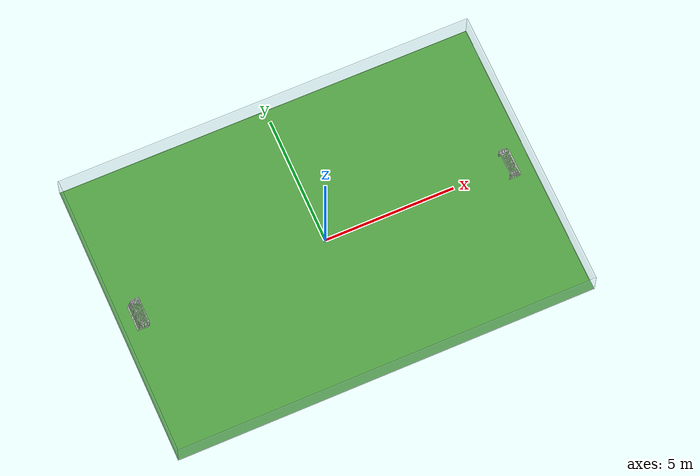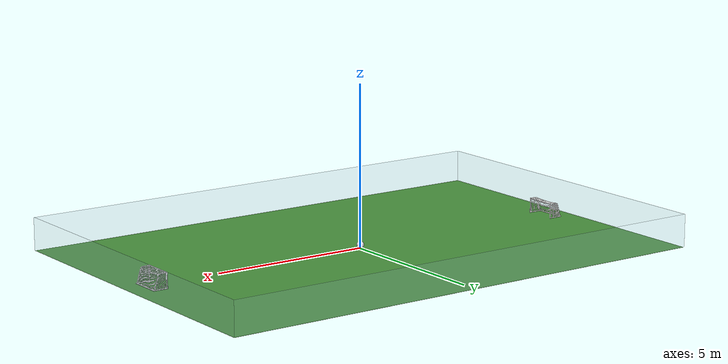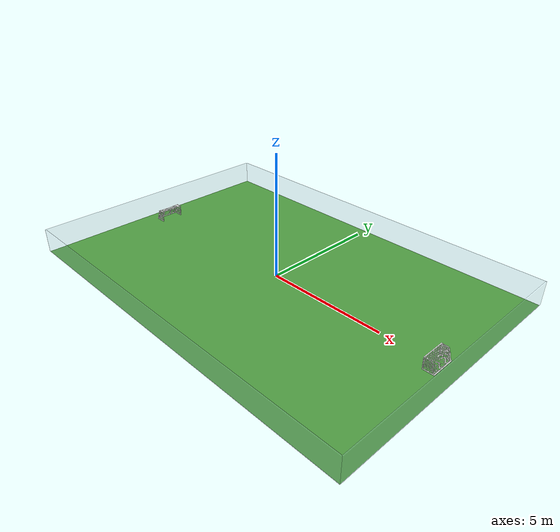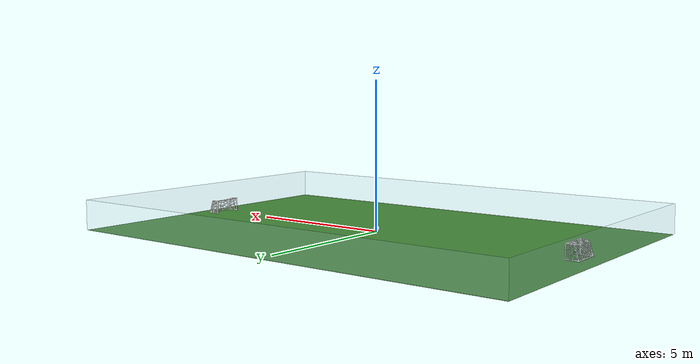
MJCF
<mujoco model="soccer_field_14x9">
  <!-- 14x9 m indoor soccer field with goals (goal.stl) and a standard
       size-5 ball (footaball.stl scaled to 0.22 m diameter).
       Field long axis = x, playing area x:[-7,7] y:[-4.5,4.5]. -->
  <compiler angle="radian" meshdir="." autolimits="true"/>
  <option timestep="0.002" gravity="0 0 -9.81"/>
  <visual>
    <global offwidth="1280" offheight="720"/>
  </visual>

  <statistic center="0 0 0.5" extent="10"/>

  <asset>
    <texture type="skybox" name="sky" builtin="gradient"
             rgb1="0.72 0.78 0.85" rgb2="0.95 0.96 0.97" width="512" height="512"/>
    <texture type="2d" name="grass_tex" file="grass_14x9.png"/>
    <material name="grass_mat" texture="grass_tex" texuniform="true"
              texrepeat="0.125 0.189" specular="0.1" shininess="0.15"
              reflectance="0.02"/>
    <mesh name="goal_mesh" file="goal.stl"/>
    <mesh name="ball_mesh" file="footaball.stl" scale="0.18514 0.18514 0.18514"/>
  </asset>

  <worldbody>
    <light name="sun" directional="true" pos="0 -4 8" dir="0 0.35 -1"
           diffuse="0.85 0.85 0.85" ambient="0.4 0.4 0.42" specular="0.15 0.15 0.15"/>
    <light name="fill" pos="6 -8 5" dir="-0.5 0.6 -0.6" diffuse="0.3 0.3 0.3" castshadow="false"/>

    <!-- grass plane: 16 x 11 m (1 m margin outside the 14x9 playing area) -->
    <geom name="field" type="plane" size="8 5.5 0.05" material="grass_mat"
          friction="1 0.005 0.0001"/>

    <!-- ============ left goal (opening faces +x) ============ -->
    <body name="goal_left" pos="-7.2533 0 0" euler="0 0 1.5708">
      <!-- visual mesh (opening faces -y in STL frame) -->
      <geom name="goal_left_vis" type="mesh" mesh="goal_mesh"
            contype="0" conaffinity="0" group="1" rgba="0.85 0.85 0.85 1"/>
      <!-- invisible collision: posts / crossbar / net box -->
      <geom name="goal_left_post_l" type="box" pos="-0.49 -0.06 0.2445" size="0.035 0.19 0.2445"
            contype="1" conaffinity="1" group="3" rgba="0 0 0 0"/>
      <geom name="goal_left_post_r" type="box" pos="0.49 -0.06 0.2445" size="0.035 0.19 0.2445"
            contype="1" conaffinity="1" group="3" rgba="0 0 0 0"/>
      <geom name="goal_left_bar" type="box" pos="0 -0.06 0.46" size="0.5 0.19 0.03"
            contype="1" conaffinity="1" group="3" rgba="0 0 0 0"/>
      <geom name="goal_left_roof" type="box" pos="0 -0.085 0.465" size="0.5 0.17 0.02"
            contype="1" conaffinity="1" group="3" rgba="0 0 0 0"/>
      <geom name="goal_left_back" type="box" pos="0 0.165 0.21" size="0.5 0.025 0.21"
            contype="1" conaffinity="1" group="3" rgba="0 0 0 0"/>
      <geom name="goal_left_side_l" type="box" pos="-0.49 -0.04 0.23" size="0.025 0.23 0.23"
            contype="1" conaffinity="1" group="3" rgba="0 0 0 0"/>
      <geom name="goal_left_side_r" type="box" pos="0.49 -0.04 0.23" size="0.025 0.23 0.23"
            contype="1" conaffinity="1" group="3" rgba="0 0 0 0"/>
    </body>

    <!-- ============ right goal (opening faces -x) ============ -->
    <body name="goal_right" pos="7.2533 0 0" euler="0 0 -1.5708">
      <geom name="goal_right_vis" type="mesh" mesh="goal_mesh"
            contype="0" conaffinity="0" group="1" rgba="0.85 0.85 0.85 1"/>
      <geom name="goal_right_post_l" type="box" pos="-0.49 -0.06 0.2445" size="0.035 0.19 0.2445"
            contype="1" conaffinity="1" group="3" rgba="0 0 0 0"/>
      <geom name="goal_right_post_r" type="box" pos="0.49 -0.06 0.2445" size="0.035 0.19 0.2445"
            contype="1" conaffinity="1" group="3" rgba="0 0 0 0"/>
      <geom name="goal_right_bar" type="box" pos="0 -0.06 0.46" size="0.5 0.19 0.03"
            contype="1" conaffinity="1" group="3" rgba="0 0 0 0"/>
      <geom name="goal_right_roof" type="box" pos="0 -0.085 0.465" size="0.5 0.17 0.02"
            contype="1" conaffinity="1" group="3" rgba="0 0 0 0"/>
      <geom name="goal_right_back" type="box" pos="0 0.165 0.21" size="0.5 0.025 0.21"
            contype="1" conaffinity="1" group="3" rgba="0 0 0 0"/>
      <geom name="goal_right_side_l" type="box" pos="-0.49 -0.04 0.23" size="0.025 0.23 0.23"
            contype="1" conaffinity="1" group="3" rgba="0 0 0 0"/>
      <geom name="goal_right_side_r" type="box" pos="0.49 -0.04 0.23" size="0.025 0.23 0.23"
            contype="1" conaffinity="1" group="3" rgba="0 0 0 0"/>
    </body>

    <!-- ============ ball: standard size-5, diameter 0.22 m ============ -->
    <body name="ball" pos="0 0 0.111">
      <freejoint name="ball_joint"/>
      <geom name="ball_collision" type="sphere" size="0.11" mass="0.43"
            friction="0.7 0.005 0.001" solref="0.004 1" group="3" rgba="0 0 0 0"/>
      <geom name="ball_visual" type="mesh" mesh="ball_mesh" pos="0 0 -0.1099"
            contype="0" conaffinity="0" group="1" mass="0" rgba="0.92 0.92 0.92 1"/>
    </body>

    <!-- indoor glass walls around the grass margin (1 m high) -->
    <geom name="wall_xp" type="box" pos="8 0 0.5" size="0.02 5.5 0.5"
          rgba="0.65 0.8 0.9 0.15"/>
    <geom name="wall_xn" type="box" pos="-8 0 0.5" size="0.02 5.5 0.5"
          rgba="0.65 0.8 0.9 0.15"/>
    <geom name="wall_yp" type="box" pos="0 5.5 0.5" size="8 0.02 0.5"
          rgba="0.65 0.8 0.9 0.15"/>
    <geom name="wall_yn" type="box" pos="0 -5.5 0.5" size="8 0.02 0.5"
          rgba="0.65 0.8 0.9 0.15"/>

    <camera name="side" pos="0 -12 5" quat="0.815583 0.578640 0 0"/>
    <camera name="top" pos="0 0 13"/>
    <camera name="goal_line" pos="-11 -6 3" quat="0.658520 0.552971 -0.328262 -0.390919"/>
  </worldbody>
</mujoco>
